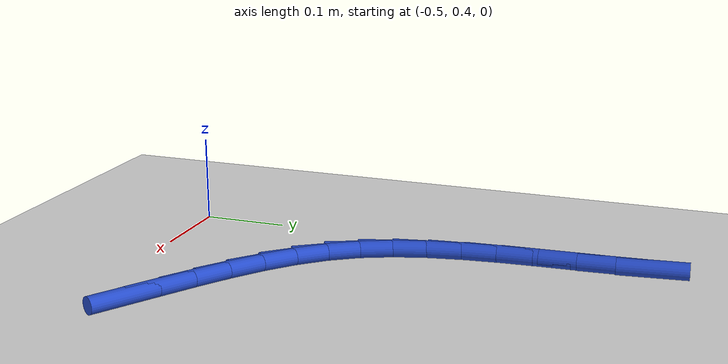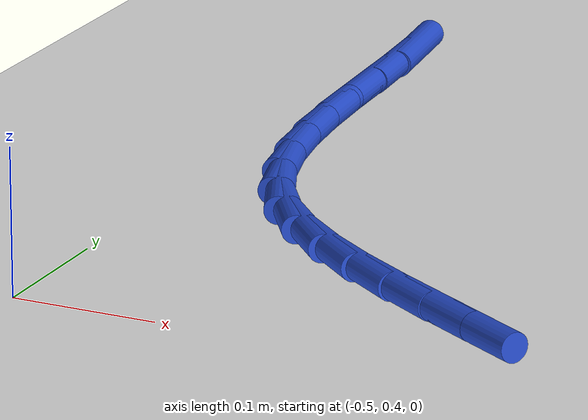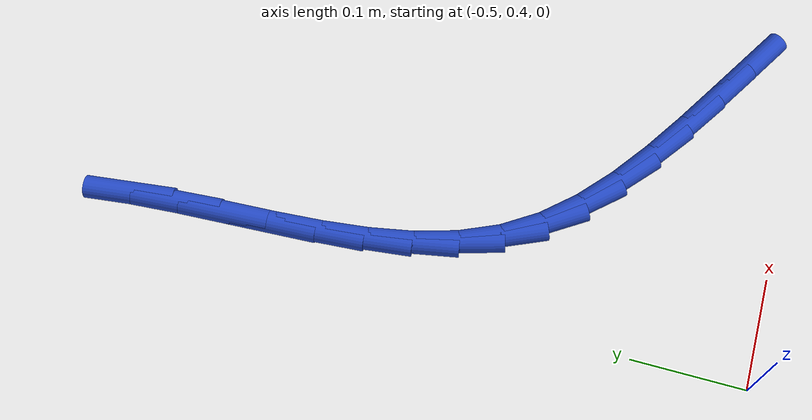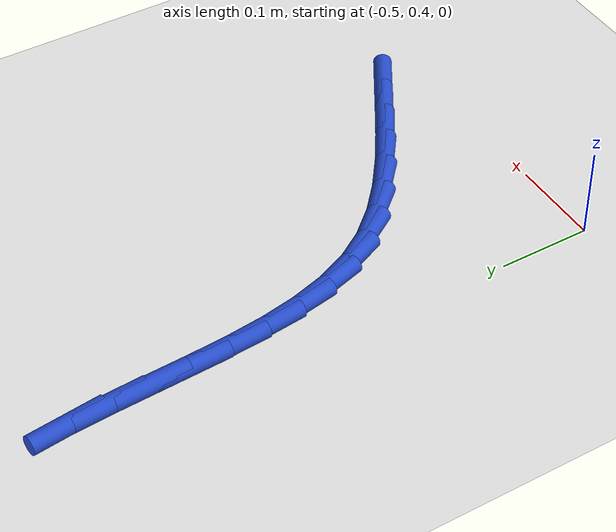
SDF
<sdf version="1.6">
 <world name="default">
  <model name="ground_plane">
   <static>1</static>
   <link name="link">
    <collision name="collision">
     <geometry><plane><normal>0 0 1</normal><size>100 100</size></plane></geometry>
     <surface><friction><ode><mu>100</mu><mu2>50</mu2></ode></friction></surface>
    </collision>
    <visual name="visual">
     <cast_shadows>0</cast_shadows>
     <geometry><plane><normal>0 0 1</normal><size>100 100</size></plane></geometry>
     <material>
      <script><uri>file://media/materials/scripts/gazebo.material</uri><name>Gazebo/WhiteGlow</name></script>
     </material>
    </visual>
   </link>
  </model>
  <model name="line">
   <link name="link_13">
    <pose>-0.2066392046248027 0.45231286210545013 0.01 0 1.57 -0.5469091196829627</pose>
    <collision name="collision">
     <geometry><cylinder><radius>0.01</radius><length>0.08</length></cylinder></geometry>
    </collision>
    <visual name="visual">
     <material>
      <script><name>Gazebo/Blue</name><uri>file://media/materials/scripts/gazebo.material</uri></script>
     </material>
     <geometry><cylinder><radius>0.01</radius><length>0.08</length></cylinder></geometry>
    </visual>
   </link>
   <link name="link_14">
    <pose>-0.24338153463521797 0.47468381580532293 0.01 0 1.57 -0.552242615982454</pose>
    <collision name="collision">
     <geometry><cylinder><radius>0.01</radius><length>0.08</length></cylinder></geometry>
    </collision>
    <visual name="visual">
     <material>
      <script><name>Gazebo/Blue</name><uri>file://media/materials/scripts/gazebo.material</uri></script>
     </material>
     <geometry><cylinder><radius>0.01</radius><length>0.08</length></cylinder></geometry>
    </visual>
   </link>
   <link name="link_15">
    <pose>-0.27982328650409005 0.4971390439317838 0.01 0 1.57 -0.5814931289321992</pose>
    <collision name="collision">
     <geometry><cylinder><radius>0.01</radius><length>0.08</length></cylinder></geometry>
    </collision>
    <visual name="visual">
     <material>
      <script><name>Gazebo/Blue</name><uri>file://media/materials/scripts/gazebo.material</uri></script>
     </material>
     <geometry><cylinder><radius>0.01</radius><length>0.08</length></cylinder></geometry>
    </visual>
   </link>
   <link name="link_16">
    <pose>-0.3150131003753659 0.5202694700448024 0.01 0 1.57 -0.6368063362622612</pose>
    <collision name="collision">
     <geometry><cylinder><radius>0.01</radius><length>0.08</length></cylinder></geometry>
    </collision>
    <visual name="visual">
     <material>
      <script><name>Gazebo/Blue</name><uri>file://media/materials/scripts/gazebo.material</uri></script>
     </material>
     <geometry><cylinder><radius>0.01</radius><length>0.08</length></cylinder></geometry>
    </visual>
   </link>
   <link name="link_17">
    <pose>-0.3479996163929922 0.5446660177043481 0.01 0 1.57 -0.7216842728819926</pose>
    <collision name="collision">
     <geometry><cylinder><radius>0.01</radius><length>0.08</length></cylinder></geometry>
    </collision>
    <visual name="visual">
     <material>
      <script><name>Gazebo/Blue</name><uri>file://media/materials/scripts/gazebo.material</uri></script>
     </material>
     <geometry><cylinder><radius>0.01</radius><length>0.08</length></cylinder></geometry>
    </visual>
   </link>
   <link name="link_18">
    <pose>-0.3778314747009158 0.5709196104703902 0.01 0 1.57 -0.8400169934311482</pose>
    <collision name="collision">
     <geometry><cylinder><radius>0.01</radius><length>0.08</length></cylinder></geometry>
    </collision>
    <visual name="visual">
     <material>
      <script><name>Gazebo/Blue</name><uri>file://media/materials/scripts/gazebo.material</uri></script>
     </material>
     <geometry><cylinder><radius>0.01</radius><length>0.08</length></cylinder></geometry>
    </visual>
   </link>
   <link name="link_19">
    <pose>-0.40355731544308376 0.599621171902898 0.01 0 1.57 -0.9932773577039897</pose>
    <collision name="collision">
     <geometry><cylinder><radius>0.01</radius><length>0.08</length></cylinder></geometry>
    </collision>
    <visual name="visual">
     <material>
      <script><name>Gazebo/Blue</name><uri>file://media/materials/scripts/gazebo.material</uri></script>
     </material>
     <geometry><cylinder><radius>0.01</radius><length>0.08</length></cylinder></geometry>
    </visual>
   </link>
   <link name="link_20">
    <pose>-0.42423618079633385 0.6313553196306986 0.01 0 1.57 -1.1564997103995225</pose>
    <collision name="collision">
     <geometry><cylinder><radius>0.01</radius><length>0.08</length></cylinder></geometry>
    </collision>
    <visual name="visual">
     <material>
      <script><name>Gazebo/Blue</name><uri>file://media/materials/scripts/gazebo.material</uri></script>
     </material>
     <geometry><cylinder><radius>0.01</radius><length>0.08</length></cylinder></geometry>
    </visual>
   </link>
   <link name="link_21">
    <pose>-0.4396019917620437 0.6662975455432761 0.01 0 1.57 -1.29006345033564</pose>
    <collision name="collision">
     <geometry><cylinder><radius>0.01</radius><length>0.08</length></cylinder></geometry>
    </collision>
    <visual name="visual">
     <material>
      <script><name>Gazebo/Blue</name><uri>file://media/materials/scripts/gazebo.material</uri></script>
     </material>
     <geometry><cylinder><radius>0.01</radius><length>0.08</length></cylinder></geometry>
    </visual>
   </link>
   <link name="link_22">
    <pose>-0.4504650100484297 0.703970841153073 0.01 0 1.57 -1.3905108438895515</pose>
    <collision name="collision">
     <geometry><cylinder><radius>0.01</radius><length>0.08</length></cylinder></geometry>
    </collision>
    <visual name="visual">
     <material>
      <script><name>Gazebo/Blue</name><uri>file://media/materials/scripts/gazebo.material</uri></script>
     </material>
     <geometry><cylinder><radius>0.01</radius><length>0.08</length></cylinder></geometry>
    </visual>
   </link>
   <link name="link_23">
    <pose>-0.4577317173967378 0.7438398673645454 0.01 0 1.57 -1.4610311942288745</pose>
    <collision name="collision">
     <geometry><cylinder><radius>0.01</radius><length>0.08</length></cylinder></geometry>
    </collision>
    <visual name="visual">
     <material>
      <script><name>Gazebo/Blue</name><uri>file://media/materials/scripts/gazebo.material</uri></script>
     </material>
     <geometry><cylinder><radius>0.01</radius><length>0.08</length></cylinder></geometry>
    </visual>
   </link>
   <link name="link_24">
    <pose>-0.4623085955482127 0.7853692850821493 0.01 0 1.57 -1.5053976260929902</pose>
    <collision name="collision">
     <geometry><cylinder><radius>0.01</radius><length>0.08</length></cylinder></geometry>
    </collision>
    <visual name="visual">
     <material>
      <script><name>Gazebo/Blue</name><uri>file://media/materials/scripts/gazebo.material</uri></script>
     </material>
     <geometry><cylinder><radius>0.01</radius><length>0.08</length></cylinder></geometry>
    </visual>
   </link>
   <link name="link_25">
    <pose>-0.46510212624410013 0.8280237552103414 0.01 0 1.57 -1.5265034010526273</pose>
    <collision name="collision">
     <geometry><cylinder><radius>0.01</radius><length>0.08</length></cylinder></geometry>
    </collision>
    <visual name="visual">
     <material>
      <script><name>Gazebo/Blue</name><uri>file://media/materials/scripts/gazebo.material</uri></script>
     </material>
     <geometry><cylinder><radius>0.01</radius><length>0.08</length></cylinder></geometry>
    </visual>
   </link>
   <link name="link_26">
    <pose>-0.46701879122564516 0.8712679386535777 0.01 0 1.57 -1.5258763141245006</pose>
    <collision name="collision">
     <geometry><cylinder><radius>0.01</radius><length>0.08</length></cylinder></geometry>
    </collision>
    <visual name="visual">
     <material>
      <script><name>Gazebo/Blue</name><uri>file://media/materials/scripts/gazebo.material</uri></script>
     </material>
     <geometry><cylinder><radius>0.01</radius><length>0.08</length></cylinder></geometry>
    </visual>
   </link>
   <link name="link_27">
    <pose>-0.46896507223409306 0.9145664963163141 0.01 0 1.57 -1.5035801102862445</pose>
    <collision name="collision">
     <geometry><cylinder><radius>0.01</radius><length>0.08</length></cylinder></geometry>
    </collision>
    <visual name="visual">
     <material>
      <script><name>Gazebo/Blue</name><uri>file://media/materials/scripts/gazebo.material</uri></script>
     </material>
     <geometry><cylinder><radius>0.01</radius><length>0.08</length></cylinder></geometry>
    </visual>
   </link>
   <link name="link_28">
    <pose>-0.47184745101068926 0.9573840891030071 0.01 0 1.57 -1.4582402726657926</pose>
    <collision name="collision">
     <geometry><cylinder><radius>0.01</radius><length>0.08</length></cylinder></geometry>
    </collision>
    <visual name="visual">
     <material>
      <script><name>Gazebo/Blue</name><uri>file://media/materials/scripts/gazebo.material</uri></script>
     </material>
     <geometry><cylinder><radius>0.01</radius><length>0.08</length></cylinder></geometry>
    </visual>
   </link>
  </model>
 </world>
</sdf>
